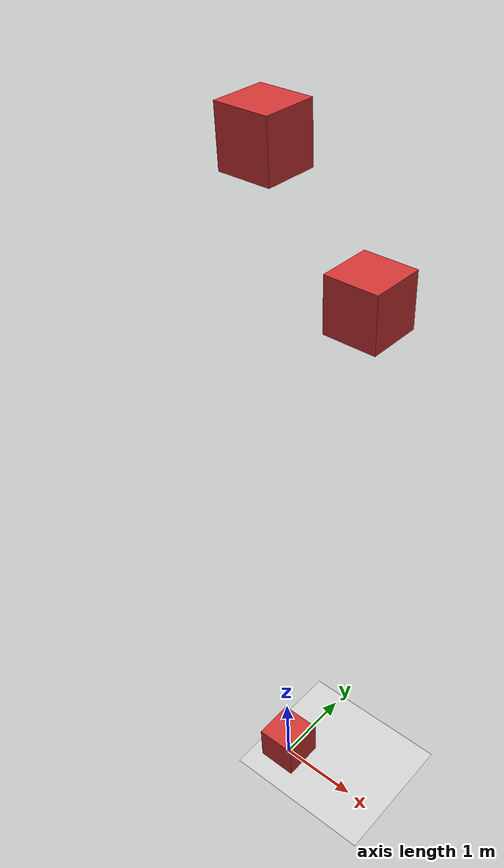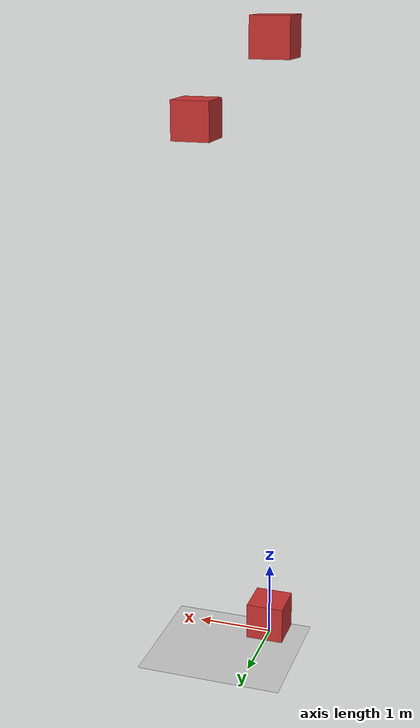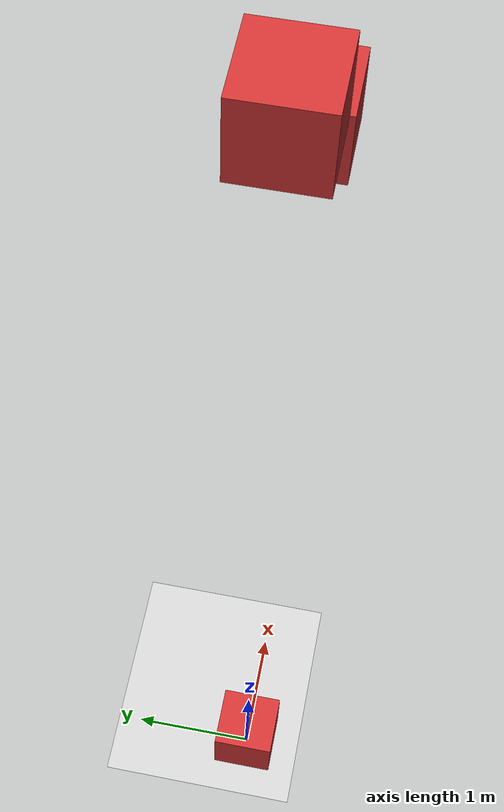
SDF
<?xml version="1.0"?>
<sdf version="1.6">
  <world name="cave_world">
    <physics name="1ms" type="ignored">
      <max_step_size>0.001</max_step_size>
      <real_time_factor>1.0</real_time_factor>
    </physics>

    <plugin filename="libignition-gazebo-physics-system.so" name="ignition::gazebo::systems::Physics"></plugin>
    <plugin filename="libignition-gazebo-user-commands-system.so" name="ignition::gazebo::systems::UserCommands"></plugin>
    <plugin filename="libignition-gazebo-scene-broadcaster-system.so" name="ignition::gazebo::systems::SceneBroadcaster"></plugin>

    <plugin filename="/home/david/workspace/src/ign-gazebo/examples/plugin/system_plugin/build/libAttachableJoint.so" name="attachable_joint::AttachableJoint"></plugin>

    <!-- FLOOR -->
    <model name="ground_plane">
      <static>true</static>
      <pose>0 0 -0.115015 0 0 0</pose>
      <link name="link">
        <collision name="collision">
          <geometry>
            <plane>
              <normal>0 0 1</normal>
            </plane>
          </geometry>
        </collision>
        <visual name="visual">
          <geometry>
            <plane>
              <normal>0 0 1</normal>
              <size>100 100</size>
            </plane>
          </geometry>
          <material>
            <ambient>0.8 0.8 0.8 1</ambient>
            <diffuse>0.8 0.8 0.8 1</diffuse>
            <specular>0.8 0.8 0.8 1</specular>
          </material>
        </visual>
      </link>
    </model>

    <!-- SUN -->
    <light type="directional" name="sun">
      <cast_shadows>true</cast_shadows>
      <pose>0 0 10 0 0 0</pose>
      <diffuse>0.8 0.8 0.8 1</diffuse>
      <specular>0.2 0.2 0.2 1</specular>
      <attenuation>
        <range>1000</range>
        <constant>0.9</constant>
        <linear>0.01</linear>
        <quadratic>0.001</quadratic>
      </attenuation>
      <direction>-0.5 0.1 -0.9</direction>
    </light>

    <!-- INCLUDE BODY Y PATAS -->

        <model name="box0">
      <pose>0 0 0.25 0 0 0</pose>
      <link name="box_body">
        <visual name="v1">
          <geometry>
            <box><size>0.5 0.5 0.5</size></box>
          </geometry>
          <material>
            <diffuse>0.8 0.2 0.2 1</diffuse>
            <specular>1.0 0 0 1</specular>
          </material>
        </visual>
        <collision name="c1">
          <geometry>
            <box><size>0.5 0.5 0.5</size></box>
          </geometry>
        </collision>
      </link>
    </model>

    <model name="box1">
      <pose>1 0 7 0 0 0</pose>
      <link name="box_body">
        <visual name="v1">
          <geometry>
            <box><size>0.5 0.5 0.5</size></box>
          </geometry>
          <material>
            <diffuse>0.8 0.2 0.2 1</diffuse>
            <specular>1.0 0 0 1</specular>
          </material>
        </visual>
        <collision name="c1">
          <geometry>
            <box><size>0.5 0.5 0.5</size></box>
          </geometry>
        </collision>
      </link>
    </model>

    <model name="box2">
      <pose>0 0 8 0 0 0</pose>
      <link name="box_body">
        <visual name="v2">
          <geometry>
            <box><size>0.5 0.5 0.5</size></box>
          </geometry>
          <material>
            <diffuse>0.8 0.2 0.2 1</diffuse>
            <specular>1.0 0 0 1</specular>
          </material>
        </visual>
        <collision name="c2">
          <geometry>
            <box><size>0.5 0.5 0.5</size></box>
          </geometry>
        </collision>
      </link>
    </model>

  </world>
</sdf>
